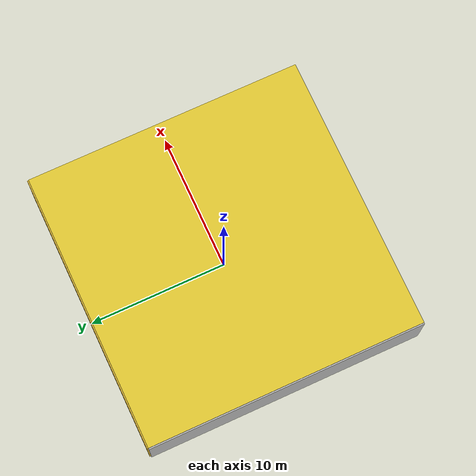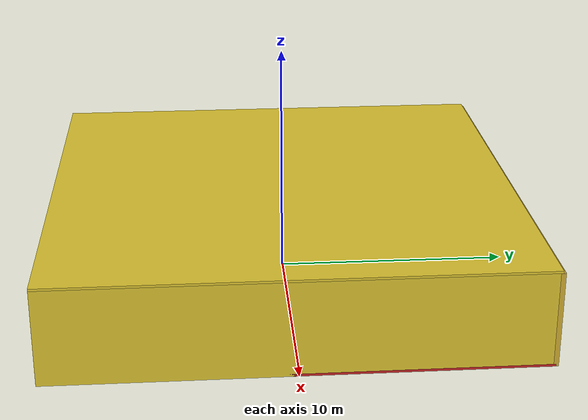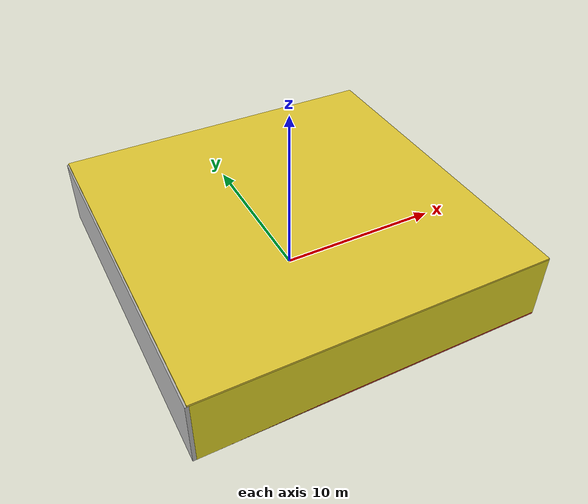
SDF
<sdf version="1.4">
 <world name="default">
  <physics type="ode">
   <max_step_size>0.001</max_step_size>
   <real_time_factor>1</real_time_factor>
   <real_time_update_rate>1000</real_time_update_rate>
   <gravity>0 0 -9.8</gravity>
  </physics>
  <scene><ambient>0.4 0.4 0.4 1</ambient><background>0.7 0.7 0.7 1</background><shadows>1</shadows></scene>
  <model name="Surrounding">
   <static>1</static>
   <link name="Ceiling">
    <collision name="Ceiling_Collision"><geometry><box><size>20 20 0.1</size></box></geometry></collision>
    <visual name="Ceiling_Visual">
     <geometry><box><size>20 20 0.1</size></box></geometry>
     <material>
      <script><uri>file://media/materials/scripts/gazebo.material</uri><name>Gazebo/ZincYellow</name></script>
     </material>
    </visual>
    <pose>0 0 4.05 0 0 0</pose>
   </link>
   <link name="Wall_South">
    <collision name="Wall_South_Collision">
     <geometry><box><size>20 0 4</size></box></geometry>
     <pose>0 0 2 0 -0 0</pose>
    </collision>
    <visual name="Wall_South_Visual">
     <pose>0 0 2 0 -0 0</pose>
     <geometry><box><size>20 0 4</size></box></geometry>
     <material>
      <script><uri>file://media/materials/scripts/gazebo.material</uri><name>Gazebo/Yellow</name></script>
     </material>
    </visual>
    <velocity_decay><linear>0</linear><angular>0</angular></velocity_decay>
    <pose>0 -10 0 0 -0 0</pose>
   </link>
   <link name="Wall_East">
    <collision name="Wall_21_Collision">
     <geometry><box><size>20 0 4</size></box></geometry>
     <pose>0 0 2 0 -0 0</pose>
    </collision>
    <visual name="Wall_21_Visual">
     <pose>0 0 2 0 -0 0</pose>
     <geometry><box><size>20 0 4</size></box></geometry>
     <material>
      <script><uri>file://media/materials/scripts/gazebo.material</uri><name>Gazebo/ZincYellow</name></script>
     </material>
    </visual>
    <velocity_decay><linear>0</linear><angular>0</angular></velocity_decay>
    <pose>10 0 0 0 -0 1.5708</pose>
   </link>
   <link name="Wall_North">
    <collision name="Wall_22_Collision">
     <geometry><box><size>20 0.2 4</size></box></geometry>
     <pose>0 0 2 0 -0 0</pose>
    </collision>
    <visual name="Wall_22_Visual">
     <pose>0 0 2 0 -0 0</pose>
     <geometry><box><size>20 0.2 4</size></box></geometry>
     <material>
      <script><uri>file://media/materials/scripts/gazebo.material</uri><name>Gazebo/Gold</name></script>
     </material>
    </visual>
    <velocity_decay><linear>0</linear><angular>0</angular></velocity_decay>
    <pose>0 10 0 0 -0 0</pose>
   </link>
   <link name="Wall_West">
    <collision name="Wall_23_Collision">
     <geometry><box><size>20 0.2 4</size></box></geometry>
     <pose>0 0 2 0 -0 0</pose>
    </collision>
    <visual name="Wall_23_Visual">
     <pose>0 0 2 0 -0 0</pose>
     <geometry><box><size>20 0.2 4</size></box></geometry>
     <material>
      <script><uri>file://media/materials/scripts/gazebo.material</uri><name>Gazebo/LightOn</name></script>
     </material>
    </visual>
    <velocity_decay><linear>0</linear><angular>0</angular></velocity_decay>
    <pose>-10 0 0 0 0 -1.5708</pose>
   </link>
   <link name="Ground_link">
    <collision name="collision">
     <pose>0 0 .05 0 -0 0</pose>
     <geometry><box><size>20 20 0.1</size></box></geometry>
    </collision>
    <visual name="visual">
     <pose>0 0 .05 0 -0 0</pose>
     <geometry><box><size>20 20 0.1</size></box></geometry>
     <material>
      <script><uri>file://media/materials/scripts/gazebo.material</uri><name>Gazebo/RedGlow</name></script>
     </material>
    </visual>
   </link>
   <static>1</static>
  </model>
  <spherical_coordinates>
   <surface_model>EARTH_WGS84</surface_model>
   <latitude_deg>0</latitude_deg>
   <longitude_deg>0</longitude_deg>
   <elevation>0</elevation>
   <heading_deg>0</heading_deg>
  </spherical_coordinates>
  <light name="lightball_0" type="diffuse">
   <diffuse>0.8 0.8 0.8 1</diffuse>
   <specular>0.2 0.2 0.2 1</specular>
   <attenuation>
    <range>100</range>
    <constant>0.7</constant>
    <linear>0.01</linear>
    <quadratic>0.001</quadratic>
   </attenuation>
   <direction>-0.5 0.1 -0.9</direction>
   <pose>-4.76934014371 -6.51369783885 1.32771418176 0 0 0</pose>
  </light>
  <light name="lightball_1" type="diffuse">
   <diffuse>0.8 0.8 0.8 1</diffuse>
   <specular>0.2 0.2 0.2 1</specular>
   <attenuation>
    <range>100</range>
    <constant>0.7</constant>
    <linear>0.01</linear>
    <quadratic>0.001</quadratic>
   </attenuation>
   <direction>-0.5 0.1 -0.9</direction>
   <pose>-9.70191843825 1.6628216735 3.49701159193 0 0 0</pose>
  </light>
  <light name="lightball_2" type="diffuse">
   <diffuse>0.8 0.8 0.8 1</diffuse>
   <specular>0.2 0.2 0.2 1</specular>
   <attenuation>
    <range>100</range>
    <constant>0.7</constant>
    <linear>0.01</linear>
    <quadratic>0.001</quadratic>
   </attenuation>
   <direction>-0.5 0.1 -0.9</direction>
   <pose>3.32312183086 -6.59040409281 3.50206710791 0 0 0</pose>
  </light>
  <light name="lightball_3" type="diffuse">
   <diffuse>0.8 0.8 0.8 1</diffuse>
   <specular>0.2 0.2 0.2 1</specular>
   <attenuation>
    <range>100</range>
    <constant>0.7</constant>
    <linear>0.01</linear>
    <quadratic>0.001</quadratic>
   </attenuation>
   <direction>-0.5 0.1 -0.9</direction>
   <pose>-0.281846840873 2.69878339757 0.557301119647 0 0 0</pose>
  </light>
  <light name="lightball_4" type="diffuse">
   <diffuse>0.8 0.8 0.8 1</diffuse>
   <specular>0.2 0.2 0.2 1</specular>
   <attenuation>
    <range>100</range>
    <constant>0.7</constant>
    <linear>0.01</linear>
    <quadratic>0.001</quadratic>
   </attenuation>
   <direction>-0.5 0.1 -0.9</direction>
   <pose>7.61158491644 -6.08228634037 1.00095215596 0 0 0</pose>
  </light>
  <include><uri>model://cabinet</uri><pose>-4.63956710356 -3.92094861783 0 0 0 1.63991024592</pose></include>
  <include>
   <uri>model://textured_shapes</uri>
   <pose>-1.30790828948 -4.53740266295 0 0 0 1.31078669088</pose>
  </include>
  <include><uri>model://table</uri><pose>-1.2039077871 1.32254749879 0 0 0 2.27801804843</pose></include>
  <include><uri>model://cabinet</uri><pose>-0.83662125125 7.98354359265 0 0 0 0.727798349528</pose></include>
  <include><uri>model://cabinet</uri><pose>2.18744523349 -4.66526740593 0 0 0 1.86721289218</pose></include>
  <include><uri>model://cabinet</uri><pose>7.52466945344 2.09817219758 0 0 0 0.230515058113</pose></include>
 </world>
</sdf>

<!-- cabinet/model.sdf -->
<sdf version="1.5">
  <model name="cabinet">
    <static>true</static>
    <link name="cabinet_bottom_plate">
      <inertial>
        <pose>0 0 -1 0 0 0</pose>
        <inertia>
          <ixx>2.050000</ixx>
          <ixy>0</ixy>
          <ixz>0</ixz>
          <iyy>2.050000</iyy>
          <iyz>0</iyz>
          <izz>2.050000</izz>
        </inertia>
        <mass>25.000000</mass>
      </inertial>
      <collision name="cabinet_bottom_plate_geom">
        <pose>0 0 0.010000 0 0 0</pose>
        <geometry>
          <box>
            <size>0.450000 0.450000 0.020000</size>
          </box>
        </geometry>
      </collision>
      <visual name="cabinet_bottom_plate_geom_visual">
        <pose>0 0 0.010000 0 0 0</pose>
        <geometry>
          <box>
            <size>0.450000 0.450000 0.020000</size>
          </box>
        </geometry>
        <material>
          <script>
            <uri>model://media/materials/scripts/gazebo.material</uri>
            <name>Gazebo/Wood</name>
          </script>
        </material>
      </visual>
      <collision name="cabinet_bottom_plate_geom_cabinet_back_plate">
        <pose>0.235000 0 0.510000 0 0 0</pose>
        <geometry>
          <box>
            <size>0.020000 0.450000 1.020000</size>
          </box>
        </geometry>
      </collision>
      <visual name="cabinet_bottom_plate_geom_cabinet_back_plate_visual">
        <pose>0.235000 0 0.510000 0 0 0</pose>
        <geometry>
          <box>
            <size>0.020000 0.450000 1.020000</size>
          </box>
        </geometry>
        <material>
          <script>
            <uri>model://media/materials/scripts/gazebo.material</uri>
            <name>Gazebo/Wood</name>
          </script>
        </material>
      </visual>
      <collision name="cabinet_bottom_plate_geom_cabinet_left_plate">
        <pose>0 0.235000 0.510000 0 0 0</pose>
        <geometry>
          <box>
            <size>0.450000 0.020000 1.020000</size>
          </box>
        </geometry>
      </collision>
      <visual name="cabinet_bottom_plate_geom_cabinet_left_plate_visual">
        <pose>0 0.235000 0.510000 0 0 0</pose>
        <geometry>
          <box>
            <size>0.450000 0.020000 1.020000</size>
          </box>
        </geometry>
        <material>
          <script>
            <uri>model://media/materials/scripts/gazebo.material</uri>
            <name>Gazebo/Wood</name>
          </script>
        </material>
      </visual>
      <collision name="cabinet_bottom_plate_geom_cabinet_middle_plate">
        <pose>0 0 0.510000 0 0 0</pose>
        <geometry>
          <box>
            <size>0.450000 0.450000 0.020000</size>
          </box>
        </geometry>
      </collision>
      <visual name="cabinet_bottom_plate_geom_cabinet_middle_plate_visual">
        <pose>0 0 0.510000 0 0 0</pose>
        <geometry>
          <box>
            <size>0.450000 0.450000 0.020000</size>
          </box>
        </geometry>
        <material>
          <script>
            <uri>model://media/materials/scripts/gazebo.material</uri>
            <name>Gazebo/Wood</name>
          </script>
        </material>
      </visual>
      <collision name="cabinet_bottom_plate_geom_cabinet_right_plate">
        <pose>0 -0.235000 0.510000 0 0 0</pose>
        <geometry>
          <box>
            <size>0.450000 0.020000 1.020000</size>
          </box>
        </geometry>
      </collision>
      <visual name="cabinet_bottom_plate_geom_cabinet_right_plate_visual">
        <pose>0 -0.235000 0.510000 0 0 0</pose>
        <geometry>
          <box>
            <size>0.450000 0.020000 1.020000</size>
          </box>
        </geometry>
        <material>
          <script>
            <uri>model://media/materials/scripts/gazebo.material</uri>
            <name>Gazebo/Wood</name>
          </script>
        </material>
      </visual>
      <collision name="cabinet_bottom_plate_geom_cabinet_top_plate">
        <pose>0 0 1.010000 0 0 0</pose>
        <geometry>
          <box>
            <size>0.450000 0.450000 0.020000</size>
          </box>
        </geometry>
      </collision>
      <visual name="cabinet_bottom_plate_geom_cabinet_top_plate_visual">
        <pose>0 0 1.010000 0 0 0</pose>
        <geometry>
          <box>
            <size>0.450000 0.450000 0.020000</size>
          </box>
        </geometry>
        <material>
          <script>
            <uri>model://media/materials/scripts/gazebo.material</uri>
            <name>Gazebo/Wood</name>
          </script>
        </material>
      </visual>
    </link>
  </model>
</sdf>

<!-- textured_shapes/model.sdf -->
<sdf version="1.6">
  <model name="textured_shapes">
    <pose>0 0 0.5 0 0 0</pose>
    <link name="box">
      <pose>0 -1.5 0 0 0 0</pose>
      <collision name="collision">
        <geometry>
          <box>
            <size>1 1 1</size>
          </box>
        </geometry>
      </collision>
      <visual name="visual">
        <geometry>
          <box>
            <size>1 1 1</size>
          </box>
        </geometry>
        <material>
          <script>
            <uri>model://../model_source/models/textured_shapes/materials/scripts</uri>
            <uri>model://../model_source/models/textured_shapes/materials/textures</uri>
            <name>TexturedShape/Squares</name>
          </script>
        </material>
      </visual>
    </link>
    <link name="sphere">
      <collision name="collision">
        <geometry>
          <sphere>
            <radius>0.5</radius>
          </sphere>
        </geometry>
      </collision>
      <visual name="visual">
        <geometry>
          <sphere>
            <radius>0.5</radius>
          </sphere>
        </geometry>
        <material>
          <script>
            <uri>model://../model_source/models/textured_shapes/materials/scripts</uri>
            <uri>model://../model_source/models/textured_shapes/materials/textures</uri>
            <name>TexturedShape/Squares</name>
          </script>
        </material>
      </visual>
    </link>
    <link name="cylinder">
      <pose>0 1.5 0 0 0 0</pose>
      <collision name="collision">
        <geometry>
          <cylinder>
            <radius>0.5</radius>
            <length>1</length>
          </cylinder>
        </geometry>
      </collision>
      <visual name="visual">
        <geometry>
          <cylinder>
            <radius>0.5</radius>
            <length>1</length>
          </cylinder>
        </geometry>
        <material>
          <script>
            <uri>model://../model_source/models/textured_shapes/materials/scripts</uri>
            <uri>model://../model_source/models/textured_shapes/materials/textures</uri>
            <name>TexturedShape/Squares</name>
          </script>
        </material>
      </visual>
    </link>
  </model>
</sdf>

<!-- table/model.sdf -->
<sdf version="1.5">
  <model name="table">
    <static>true</static>
    <link name="link">
      <collision name="surface">
        <pose>0 0 1.0 0 0 0</pose>
        <geometry>
          <box>
            <size>1.5 0.8 0.03</size>
          </box>
        </geometry>
        <surface>
          <friction>
            <ode>
              <mu>0.6</mu>
              <mu2>0.6</mu2>
            </ode>
          </friction>
        </surface>
      </collision>
      <visual name="visual1">
        <pose>0 0 1.0 0 0 0</pose>
        <geometry>
          <box>
            <size>1.5 0.8 0.03</size>
          </box>
        </geometry>
        <material>
          <script>
            <uri>model://media/materials/scripts/gazebo.material</uri>
            <name>Gazebo/Wood</name>
          </script>
        </material>
      </visual>
      <collision name="front_left_leg">
        <pose>0.68 0.38 0.5 0 0 0</pose>
        <geometry>
          <cylinder>
            <radius>0.02</radius>
            <length>1.0</length>
          </cylinder>
        </geometry>
      </collision>
      <visual name="front_left_leg">
        <pose>0.68 0.38 0.5 0 0 0</pose>
        <geometry>
          <cylinder>
            <radius>0.02</radius>
            <length>1.0</length>
          </cylinder>
        </geometry>
        <material>
          <script>
            <uri>model://media/materials/scripts/gazebo.material</uri>
            <name>Gazebo/Grey</name>
          </script>
        </material>
      </visual>
      <collision name="front_right_leg">
        <pose>0.68 -0.38 0.5 0 0 0</pose>
        <geometry>
          <cylinder>
            <radius>0.02</radius>
            <length>1.0</length>
          </cylinder>
        </geometry>
      </collision>
      <visual name="front_right_leg">
        <pose>0.68 -0.38 0.5 0 0 0</pose>
        <geometry>
          <cylinder>
            <radius>0.02</radius>
            <length>1.0</length>
          </cylinder>
        </geometry>
        <material>
          <script>
            <uri>model://media/materials/scripts/gazebo.material</uri>
            <name>Gazebo/Grey</name>
          </script>
        </material>
      </visual>
      <collision name="back_right_leg">
        <pose>-0.68 -0.38 0.5 0 0 0</pose>
        <geometry>
          <cylinder>
            <radius>0.02</radius>
            <length>1.0</length>
          </cylinder>
        </geometry>
      </collision>
      <visual name="back_right_leg">
        <pose>-0.68 -0.38 0.5 0 0 0</pose>
        <geometry>
          <cylinder>
            <radius>0.02</radius>
            <length>1.0</length>
          </cylinder>
        </geometry>
        <material>
          <script>
            <uri>model://media/materials/scripts/gazebo.material</uri>
            <name>Gazebo/Grey</name>
          </script>
        </material>
      </visual>
      <collision name="back_left_leg">
        <pose>-0.68 0.38 0.5 0 0 0</pose>
        <geometry>
          <cylinder>
            <radius>0.02</radius>
            <length>1.0</length>
          </cylinder>
        </geometry>
      </collision>
      <visual name="back_left_leg">
        <pose>-0.68 0.38 0.5 0 0 0</pose>
        <geometry>
          <cylinder>
            <radius>0.02</radius>
            <length>1.0</length>
          </cylinder>
        </geometry>
        <material>
          <script>
            <uri>model://media/materials/scripts/gazebo.material</uri>
            <name>Gazebo/Grey</name>
          </script>
        </material>
      </visual>
    </link>
  </model>
</sdf>
